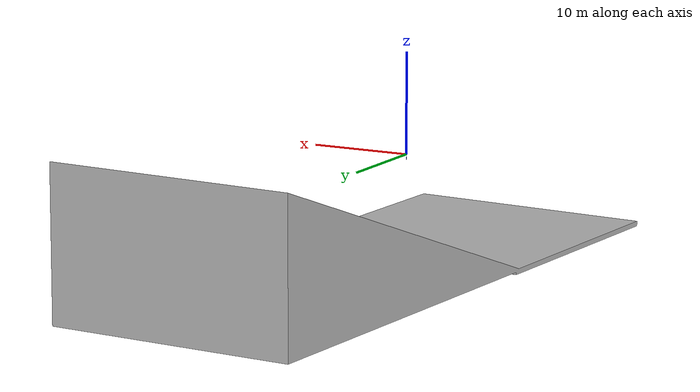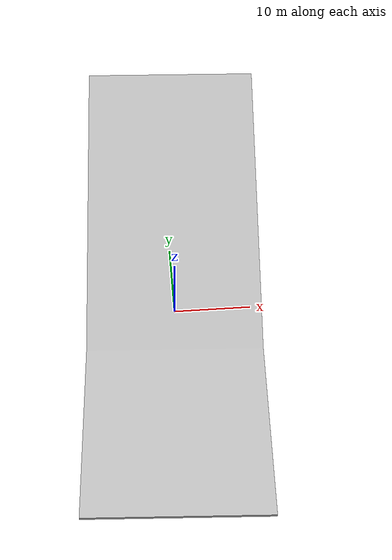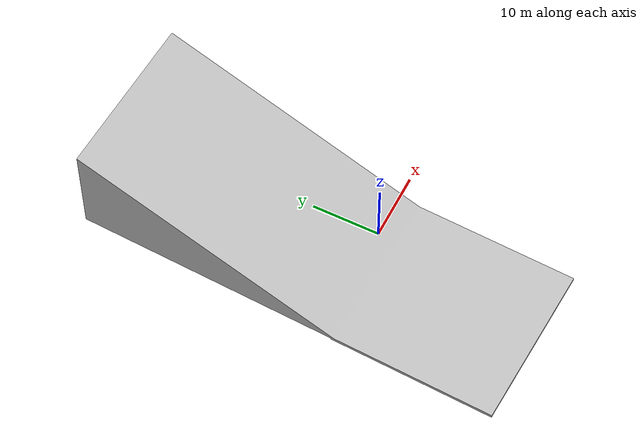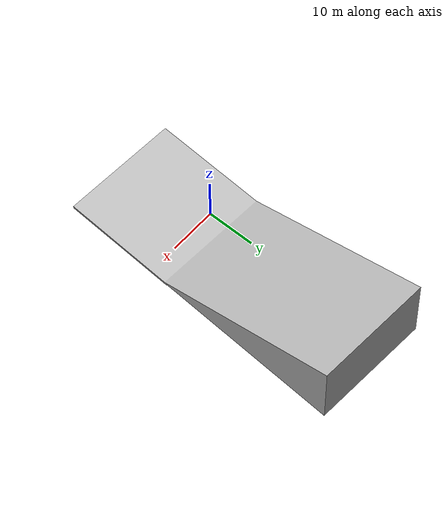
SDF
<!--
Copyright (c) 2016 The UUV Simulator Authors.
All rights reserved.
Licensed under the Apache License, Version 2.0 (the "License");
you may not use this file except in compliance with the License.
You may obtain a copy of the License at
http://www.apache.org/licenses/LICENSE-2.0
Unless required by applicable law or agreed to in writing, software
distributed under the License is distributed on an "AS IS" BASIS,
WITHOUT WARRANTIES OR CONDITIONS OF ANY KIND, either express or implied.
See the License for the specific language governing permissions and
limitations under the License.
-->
<sdf version="1.5">
 <world name="lake_copy">
  <physics name="default_physics" default="true" type="ode">
   <max_step_size>0.004</max_step_size>
   <real_time_factor>1</real_time_factor>
   <real_time_update_rate>250</real_time_update_rate>
   <ode><solver><type>quick</type><iters>50</iters><sor>0.5</sor></solver></ode>
  </physics>
  <scene>
   <ambient>0.01 0.01 0.01 1.0</ambient>
   <sky><clouds><speed>12</speed></clouds></sky>
   <shadows>0</shadows>
  </scene>
  <spherical_coordinates>
   <latitude_deg>38.765824</latitude_deg>
   <longitude_deg>-9.092815</longitude_deg>
  </spherical_coordinates>
  <light type="directional" name="sun1">
   <pose>50 0 150 0 0 0</pose>
   <diffuse>1 1 1 1</diffuse>
   <specular>.1 .1 .1 1</specular>
   <direction>0.3 0.3 -1</direction>
  </light>
  <include><uri>model://sun</uri></include>
  <include><uri>model://ned_frame</uri></include>
  <include><uri>model://floor_10deg</uri><pose>0 0 20 0 0 1.52</pose></include>
  <plugin name="underwater_current_plugin" filename="libuuv_underwater_current_ros_plugin.so">
   <namespace>hydrodynamics</namespace>
   <constant_current>
    <topic>current_velocity</topic>
    <velocity><mean>0</mean><min>0</min><max>5</max><mu>0.0</mu><noiseAmp>0.0</noiseAmp></velocity>
    <horizontal_angle>
     <mean>0</mean>
     <min>-3.141592653589793238</min>
     <max>3.141592653589793238</max>
     <mu>0.0</mu>
     <noiseAmp>0.0</noiseAmp>
    </horizontal_angle>
    <vertical_angle>
     <mean>0</mean>
     <min>-3.141592653589793238</min>
     <max>3.141592653589793238</max>
     <mu>0.0</mu>
     <noiseAmp>0.0</noiseAmp>
    </vertical_angle>
   </constant_current>
  </plugin>
  <plugin name="sc_interface" filename="libuuv_sc_ros_interface_plugin.so"/>
 </world>
</sdf>

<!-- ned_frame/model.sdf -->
<sdf version='1.5'>
    <model name="world_ned">

      <pose>0 0 0 0 0 0</pose>
      <static>true</static>

      <link name="world_ned">
        <gravity>0</gravity>
        <pose>0 0 0 3.14159265359 0 1.5707963267948966</pose>

        <visual name="N_visual">
          <pose>0.25 0 0 1.5707963267948966 0 1.5707963267948966</pose>
          <geometry>
            <cylinder>
              <radius>0.01</radius>
              <length>0.5</length>
            </cylinder>
          </geometry>
          <material>
            <script>
              <uri>file://media/materials/scripts/gazebo.material</uri>
              <name>Gazebo/Red</name>
            </script>
          </material>
        </visual>

        <visual name="E_visual">
          <pose>0 0.25 0 1.5707963267948966 0 0</pose>
          <geometry>
            <cylinder>
              <radius>0.01</radius>
              <length>0.5</length>
            </cylinder>
          </geometry>
          <material>
            <script>
              <uri>file://media/materials/scripts/gazebo.material</uri>
              <name>Gazebo/Green</name>
            </script>
          </material>
        </visual>

        <visual name="D_visual">
          <pose>0 0 0.25 0 0 0</pose>
          <geometry>
            <cylinder>
              <radius>0.01</radius>
              <length>0.5</length>
            </cylinder>
          </geometry>
          <material>
            <script>
              <uri>file://media/materials/scripts/gazebo.material</uri>
              <name>Gazebo/Blue</name>
            </script>
          </material>
        </visual>
      </link>
    </model>
</sdf>

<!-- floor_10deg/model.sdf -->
<sdf version="1.5">
  <model name="floor">
    <link name="floor">
      <static>false</static>
      <collision name="floor">
        <pose>-12 0 -30 0 0 0</pose>
        <geometry>
          <mesh>
            <uri>model://floor/meshes/wedge_plane.dae</uri>
            <scale>0.5 0.5 0.5</scale>
          </mesh>
        </geometry>

      </collision>

      <visual name="floor">
        <pose>-12 0 -30 0 0 0</pose>
        <cast_shadows>false</cast_shadows>
        <geometry>
          <mesh>
            <uri>model://floor/meshes/wedge_plane.dae</uri>
            <scale>0.5 0.5 0.5</scale>

          </mesh>
        </geometry>

      </visual>

       <kinematic>1</kinematic>
     </link>
  </model>
</sdf>
